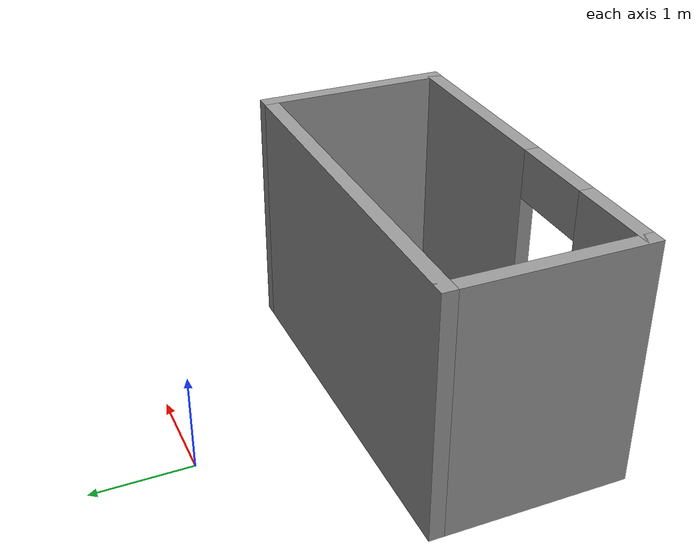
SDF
<?xml version='1.0'?>
<sdf version='1.6'>
  <model name='Map2'>
    <pose frame=''>0.285 -2.545 0 0 -0 0</pose>
    <link name='Wall_0'>
      <collision name='Wall_0_Collision'>
        <geometry>
          <box>
            <size>2 0.15 2.5</size>
          </box>
        </geometry>
        <pose frame=''>0 0 1.25 0 -0 0</pose>
      </collision>
      <visual name='Wall_0_Visual'>
        <pose frame=''>0 0 1.25 0 -0 0</pose>
        <geometry>
          <box>
            <size>2 0.15 2.5</size>
          </box>
        </geometry>
        <material>
          <script>
            <uri>file://media/materials/scripts/gazebo.material</uri>
            <name>Gazebo/Grey</name>
          </script>
          <ambient>1 1 1 1</ambient>
        </material>
      </visual>
      <pose frame=''>-1.925 0 0 0 0 -1.5708</pose>
    </link>
    <link name='Wall_1'>
      <pose frame=''>0 -0.925 0 0 -0 0</pose>
      <visual name='Wall_1_Visual_0'>
        <pose frame=''>-1.4975 0 1.25 0 -0 0</pose>
        <geometry>
          <box>
            <size>1.005 0.15 2.5</size>
          </box>
        </geometry>
        <material>
          <script>
            <uri>file://media/materials/scripts/gazebo.material</uri>
            <name>Gazebo/Grey</name>
          </script>
          <ambient>1 1 1 1</ambient>
        </material>
      </visual>
      <collision name='Wall_1_Collision_0'>
        <geometry>
          <box>
            <size>1.005 0.15 2.5</size>
          </box>
        </geometry>
        <pose frame=''>-1.4975 0 1.25 0 -0 0</pose>
      </collision>
      <visual name='Wall_1_Visual_1'>
        <pose frame=''>0.9525 0 1.25 0 -0 0</pose>
        <geometry>
          <box>
            <size>2.095 0.15 2.5</size>
          </box>
        </geometry>
        <material>
          <script>
            <uri>file://media/materials/scripts/gazebo.material</uri>
            <name>Gazebo/Grey</name>
          </script>
          <ambient>1 1 1 1</ambient>
        </material>
      </visual>
      <collision name='Wall_1_Collision_1'>
        <geometry>
          <box>
            <size>2.095 0.15 2.5</size>
          </box>
        </geometry>
        <pose frame=''>0.9525 0 1.25 0 -0 0</pose>
      </collision>
      <visual name='Wall_1_Visual_2'>
        <pose frame=''>-0.545 0 2.25 0 -0 0</pose>
        <geometry>
          <box>
            <size>0.9 0.15 0.5</size>
          </box>
        </geometry>
        <material>
          <script>
            <uri>file://media/materials/scripts/gazebo.material</uri>
            <name>Gazebo/Grey</name>
          </script>
          <ambient>1 1 1 1</ambient>
        </material>
      </visual>
      <collision name='Wall_1_Collision_2'>
        <geometry>
          <box>
            <size>0.9 0.15 0.5</size>
          </box>
        </geometry>
        <pose frame=''>-0.545 0 2.25 0 -0 0</pose>
      </collision>
    </link>
    <link name='Wall_2'>
      <collision name='Wall_2_Collision'>
        <geometry>
          <box>
            <size>2 0.15 2.5</size>
          </box>
        </geometry>
        <pose frame=''>0 0 1.25 0 -0 0</pose>
      </collision>
      <visual name='Wall_2_Visual'>
        <pose frame=''>0 0 1.25 0 -0 0</pose>
        <geometry>
          <box>
            <size>2 0.15 2.5</size>
          </box>
        </geometry>
        <material>
          <script>
            <uri>file://media/materials/scripts/gazebo.material</uri>
            <name>Gazebo/Grey</name>
          </script>
          <ambient>1 1 1 1</ambient>
        </material>
      </visual>
      <pose frame=''>1.925 0 0 0 -0 1.5708</pose>
    </link>
    <link name='Wall_3'>
      <collision name='Wall_3_Collision'>
        <geometry>
          <box>
            <size>4 0.15 2.5</size>
          </box>
        </geometry>
        <pose frame=''>0 0 1.25 0 -0 0</pose>
      </collision>
      <visual name='Wall_3_Visual'>
        <pose frame=''>0 0 1.25 0 -0 0</pose>
        <geometry>
          <box>
            <size>4 0.15 2.5</size>
          </box>
        </geometry>
        <material>
          <script>
            <uri>file://media/materials/scripts/gazebo.material</uri>
            <name>Gazebo/Grey</name>
          </script>
          <ambient>1 1 1 1</ambient>
        </material>
      </visual>
      <pose frame=''>0 0.925 0 0 -0 3.14159</pose>
    </link>
    <static>1</static>
  </model>
</sdf>
